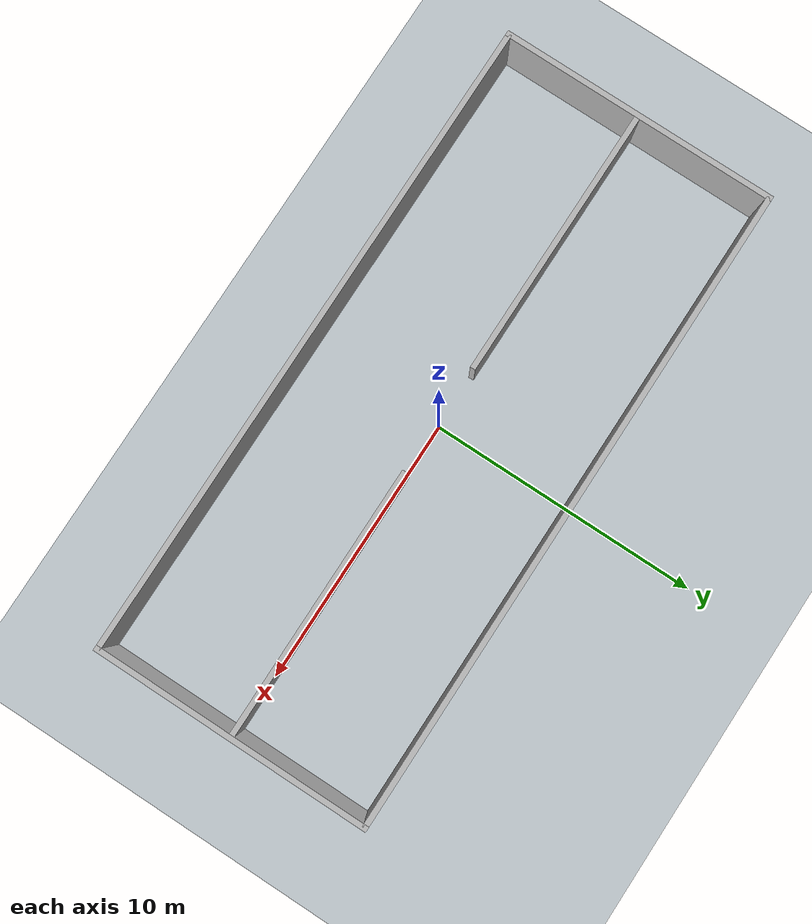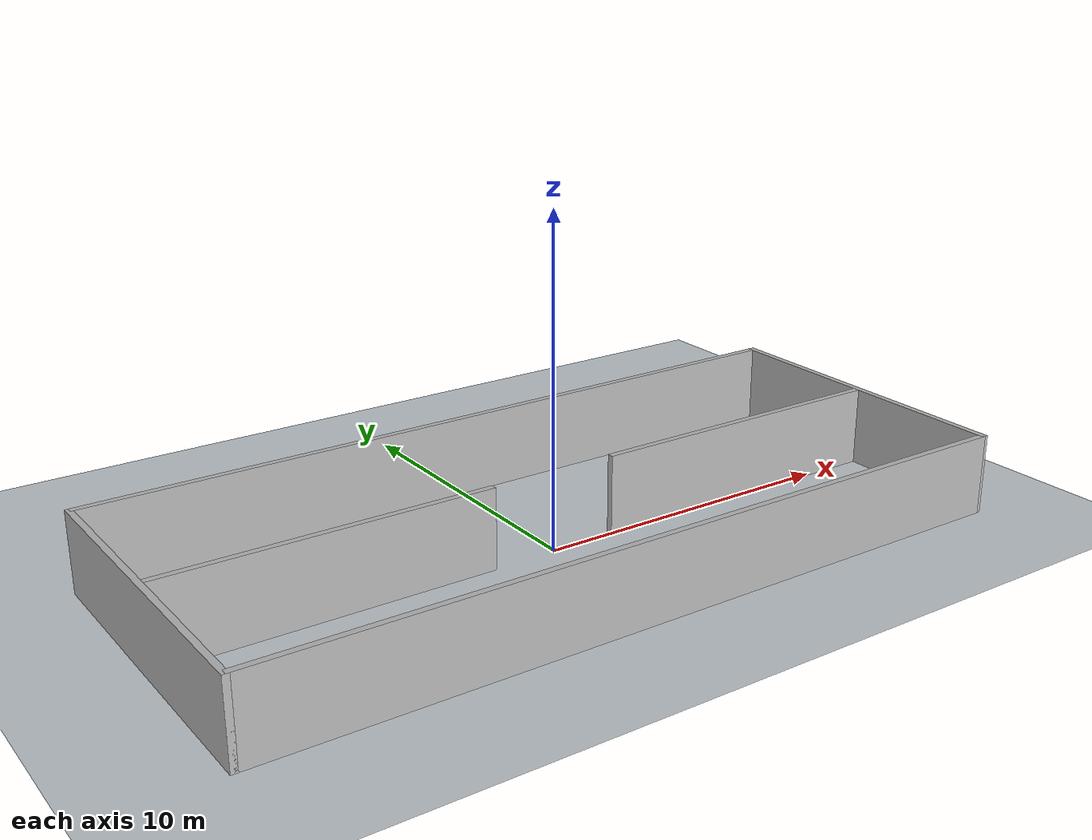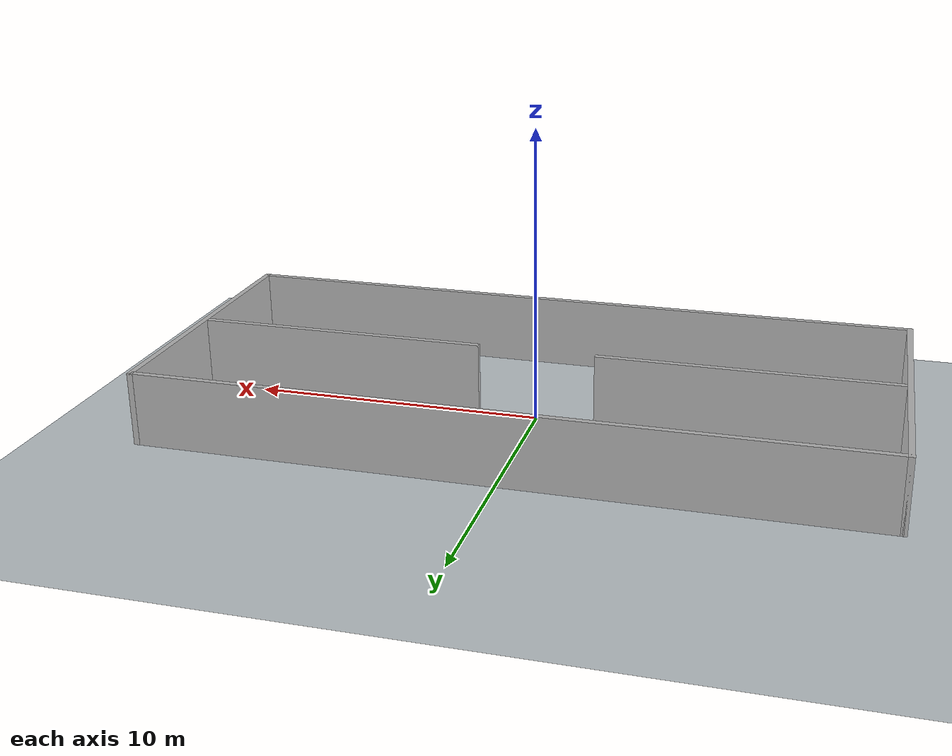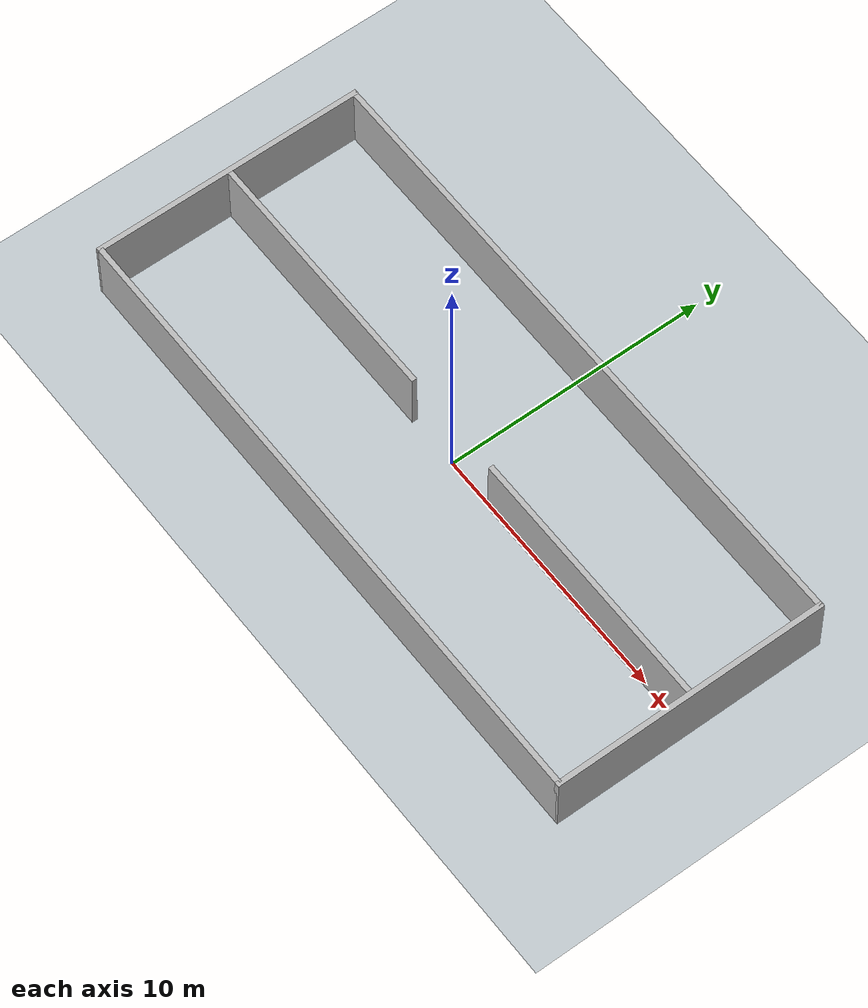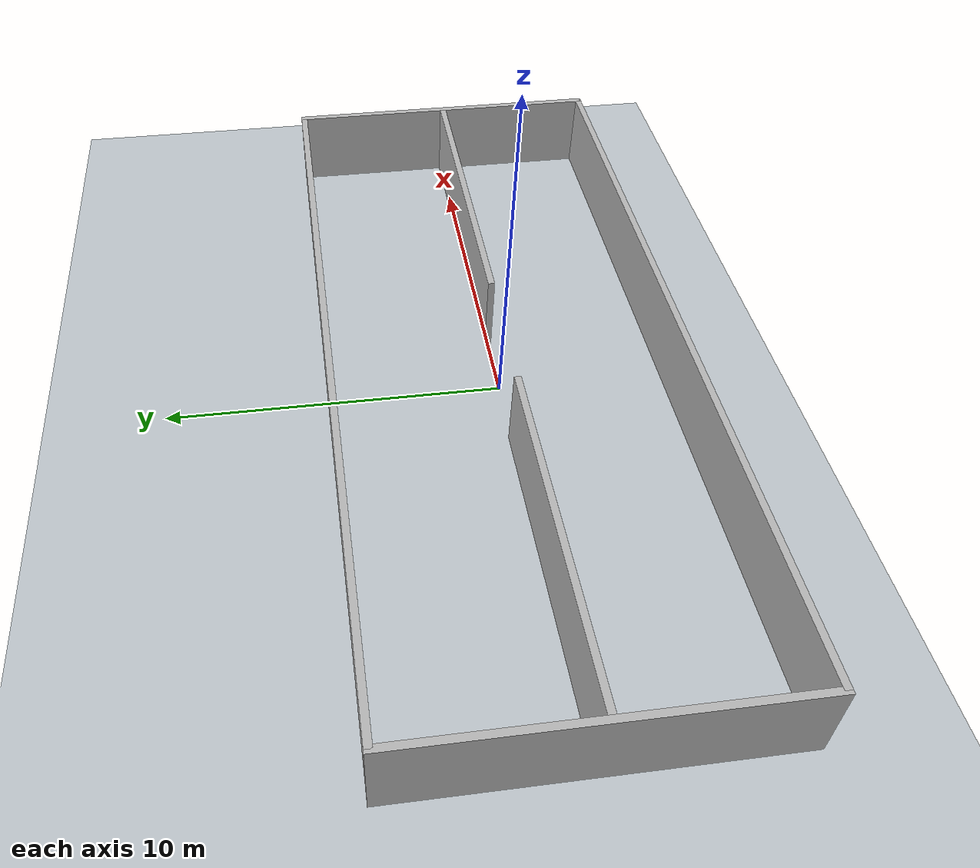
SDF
<?xml version="1.0" ?>
<sdf version="1.7">
  <world name="parallel_hallways">
    <physics type="ode">
      <max_step_size>0.01</max_step_size>
    </physics>

    <light type="directional" name="sun">
      <cast_shadows>true</cast_shadows>
      <pose>0 0 10 0 0 0</pose>
      <diffuse>0.8 0.8 0.8 1</diffuse>
      <specular>0.2 0.2 0.2 1</specular>
      <attenuation>
        <range>1000</range>
        <constant>0.9</constant>
        <linear>0.01</linear>
        <quadratic>0.001</quadratic>
      </attenuation>
      <direction>-0.5 0.1 -0.9</direction>
    </light>

    <model name="ground_plane">
      <static>true</static>
      <link name="link">
        <collision name="collision">
          <geometry>
            <plane>
              <normal>0 0 1</normal>
              <size>100 100</size>
            </plane>
          </geometry>
        </collision>
        <visual name="visual">
          <geometry>
            <plane>
              <normal>0 0 1</normal>
              <size>100 100</size>
            </plane>
          </geometry>
          <material>
            <ambient>0.75 0.78 0.8 1</ambient>
            <diffuse>0.75 0.78 0.8 1</diffuse>
          </material>
        </visual>
      </link>
    </model>

    <!-- Outer boundary for two long parallel corridors -->
    <model name="wall_top">
      <static>true</static>
      <link name="link">
        <pose>0 5.1 1.25 0 0 0</pose>
        <collision name="collision"><geometry><box><size>24.2 0.2 2.5</size></box></geometry></collision>
        <visual name="visual"><geometry><box><size>24.2 0.2 2.5</size></box></geometry></visual>
      </link>
    </model>

    <model name="wall_bottom">
      <static>true</static>
      <link name="link">
        <pose>0 -5.1 1.25 0 0 0</pose>
        <collision name="collision"><geometry><box><size>24.2 0.2 2.5</size></box></geometry></collision>
        <visual name="visual"><geometry><box><size>24.2 0.2 2.5</size></box></geometry></visual>
      </link>
    </model>

    <model name="wall_left">
      <static>true</static>
      <link name="link">
        <pose>-12.1 0 1.25 0 0 0</pose>
        <collision name="collision"><geometry><box><size>0.2 10.4 2.5</size></box></geometry></collision>
        <visual name="visual"><geometry><box><size>0.2 10.4 2.5</size></box></geometry></visual>
      </link>
    </model>

    <model name="wall_right">
      <static>true</static>
      <link name="link">
        <pose>12.1 0 1.25 0 0 0</pose>
        <collision name="collision"><geometry><box><size>0.2 10.4 2.5</size></box></geometry></collision>
        <visual name="visual"><geometry><box><size>0.2 10.4 2.5</size></box></geometry></visual>
      </link>
    </model>

    <!-- Middle wall split into two pieces to create one connector passage in the middle -->
    <model name="middle_wall_left">
      <static>true</static>
      <link name="link">
        <pose>-7 0 1.25 0 0 0</pose>
        <collision name="collision"><geometry><box><size>10 0.2 2.5</size></box></geometry></collision>
        <visual name="visual"><geometry><box><size>10 0.2 2.5</size></box></geometry></visual>
      </link>
    </model>

    <model name="middle_wall_right">
      <static>true</static>
      <link name="link">
        <pose>7 0 1.25 0 0 0</pose>
        <collision name="collision"><geometry><box><size>10 0.2 2.5</size></box></geometry></collision>
        <visual name="visual"><geometry><box><size>10 0.2 2.5</size></box></geometry></visual>
      </link>
    </model>
  </world>
</sdf>
